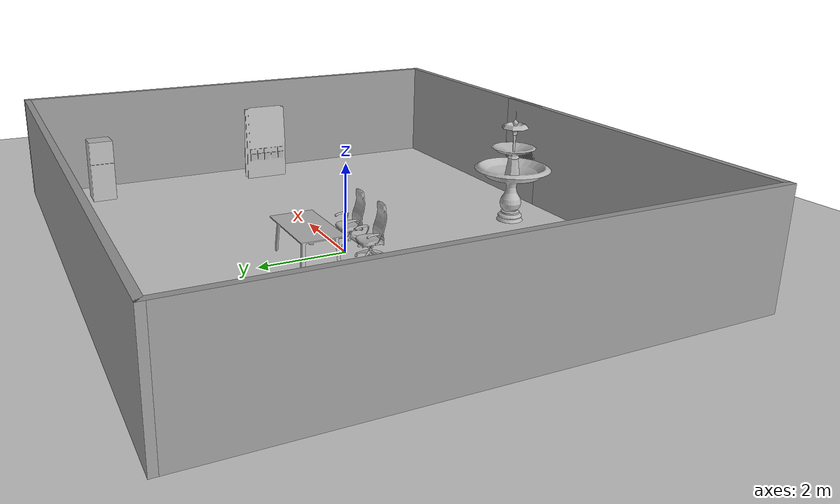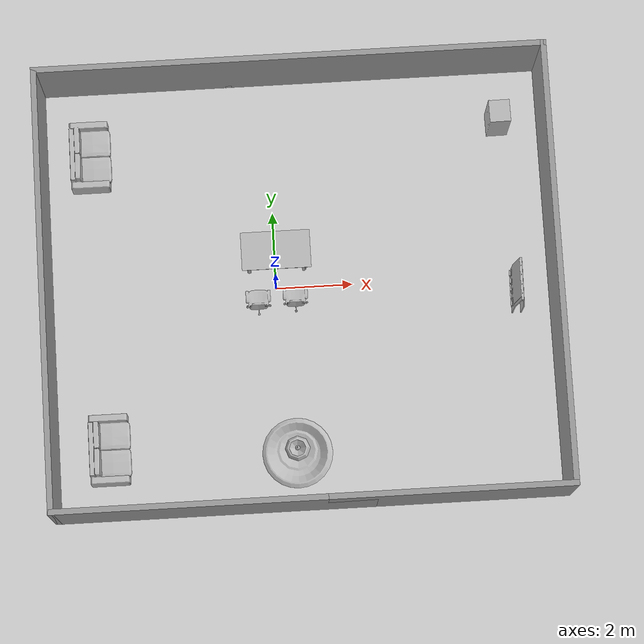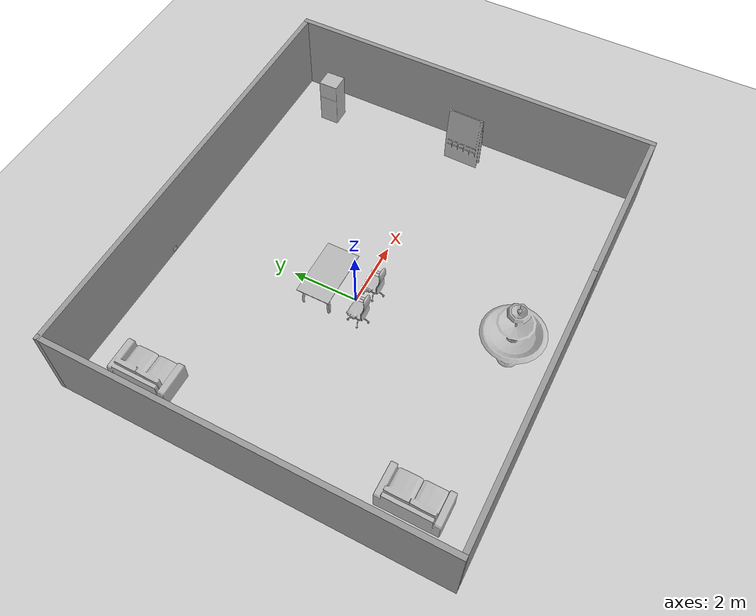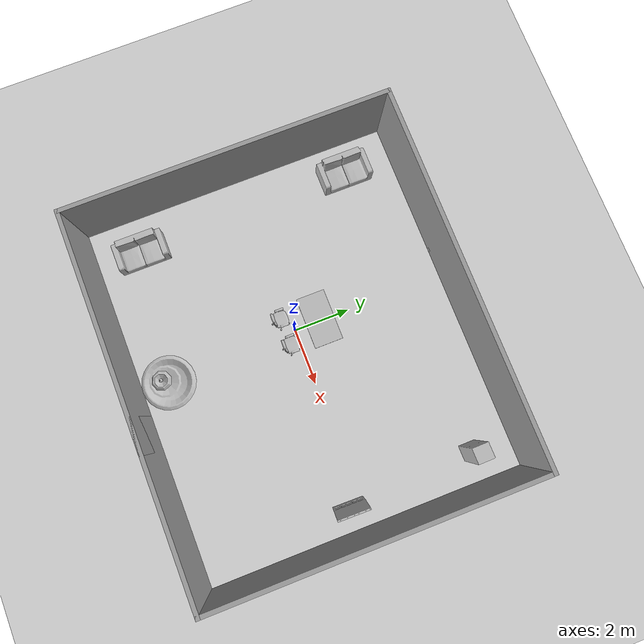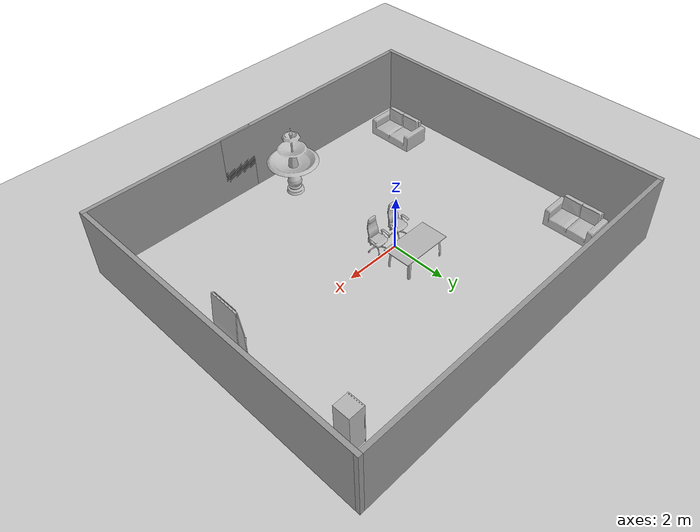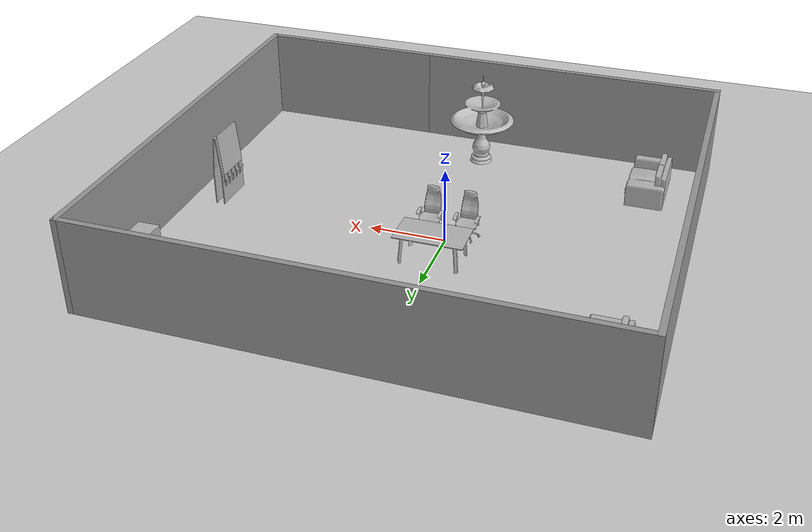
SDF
<sdf version="1.7">
 <world name="default">
  <light name="sun" type="directional">
   <pose>0 0 10 0 -0 0</pose>
   <diffuse>0.8 0.8 0.8 1</diffuse>
   <specular>0.2 0.2 0.2 1</specular>
   <attenuation>
    <range>1000</range>
    <constant>0.9</constant>
    <linear>0.01</linear>
    <quadratic>0.001</quadratic>
   </attenuation>
   <direction>-0.5 0.1 -0.9</direction>
   <spot><inner_angle>0</inner_angle><outer_angle>0</outer_angle><falloff>0</falloff></spot>
  </light>
  <model name="ground_plane">
   <static>1</static>
   <link name="link">
    <collision name="collision">
     <geometry><plane><normal>0 0 1</normal><size>100 100</size></plane></geometry>
     <surface><friction><ode><mu>100</mu><mu2>50</mu2></ode></friction></surface>
    </collision>
    <visual name="visual">
     <cast_shadows>0</cast_shadows>
     <geometry><plane><normal>0 0 1</normal><size>100 100</size></plane></geometry>
     <material>
      <script><uri>file://media/materials/scripts/gazebo.material</uri><name>Gazebo/Grey</name></script>
     </material>
    </visual>
   </link>
  </model>
  <gravity>0 0 -9.8</gravity>
  <magnetic_field>6e-06 2.3e-05 -4.2e-05</magnetic_field>
  <atmosphere type="adiabatic"/>
  <physics type="ode">
   <max_step_size>0.001</max_step_size>
   <real_time_factor>1</real_time_factor>
   <real_time_update_rate>1000</real_time_update_rate>
  </physics>
  <scene><ambient>0.4 0.4 0.4 1</ambient><background>0.7 0.7 0.7 1</background><shadows>1</shadows></scene>
  <audio><device>default</device></audio>
  <spherical_coordinates>
   <surface_model>EARTH_WGS84</surface_model>
   <latitude_deg>0</latitude_deg>
   <longitude_deg>0</longitude_deg>
   <elevation>0</elevation>
   <heading_deg>0</heading_deg>
  </spherical_coordinates>
  <model name="building_plan_small">
   <pose>0.63358 -0.10139 0 0 -0 0</pose>
   <link name="Wall_0">
    <collision name="Wall_0_Collision">
     <geometry><box><size>6.25 0.15 2.5</size></box></geometry>
     <pose>0 0 1.25 0 -0 0</pose>
    </collision>
    <visual name="Wall_0_Visual">
     <pose>0 0 1.25 0 -0 0</pose>
     <geometry><box><size>6.25 0.15 2.5</size></box></geometry>
     <material>
      <script><uri>file://media/materials/scripts/gazebo.material</uri><name>Gazebo/Grey</name></script>
      <ambient>1 1 1 1</ambient>
     </material>
     <meta><layer>0</layer></meta>
    </visual>
    <pose>3.5 -5.675 0 0 -0 0</pose>
   </link>
   <link name="Wall_3">
    <collision name="Wall_3_Collision">
     <geometry><box><size>11.5 0.15 2.5</size></box></geometry>
     <pose>0 0 1.25 0 -0 0</pose>
    </collision>
    <visual name="Wall_3_Visual">
     <pose>0 0 1.25 0 -0 0</pose>
     <geometry><box><size>11.5 0.15 2.5</size></box></geometry>
     <material>
      <script><uri>file://media/materials/scripts/gazebo.material</uri><name>Gazebo/Grey</name></script>
      <ambient>1 1 1 1</ambient>
     </material>
     <meta><layer>0</layer></meta>
    </visual>
    <pose>6.55 0 0 0 -0 1.5708</pose>
   </link>
   <link name="Wall_4">
    <collision name="Wall_4_Collision">
     <geometry><box><size>13.25 0.15 2.5</size></box></geometry>
     <pose>0 0 1.25 0 -0 0</pose>
    </collision>
    <visual name="Wall_4_Visual">
     <pose>0 0 1.25 0 -0 0</pose>
     <geometry><box><size>13.25 0.15 2.5</size></box></geometry>
     <material>
      <script><uri>file://media/materials/scripts/gazebo.material</uri><name>Gazebo/Grey</name></script>
      <ambient>1 1 1 1</ambient>
     </material>
     <meta><layer>0</layer></meta>
    </visual>
    <pose>0 5.675 0 0 -0 3.14159</pose>
   </link>
   <link name="Wall_5">
    <collision name="Wall_5_Collision">
     <geometry><box><size>11.5 0.15 2.5</size></box></geometry>
     <pose>0 0 1.25 0 -0 0</pose>
    </collision>
    <visual name="Wall_5_Visual">
     <pose>0 0 1.25 0 -0 0</pose>
     <geometry><box><size>11.5 0.15 2.5</size></box></geometry>
     <material>
      <script><uri>file://media/materials/scripts/gazebo.material</uri><name>Gazebo/Grey</name></script>
      <ambient>1 1 1 1</ambient>
     </material>
     <meta><layer>0</layer></meta>
    </visual>
    <pose>-6.55 0 0 0 -0 -1.5708</pose>
   </link>
   <link name="Wall_6">
    <collision name="Wall_6_Collision">
     <geometry><box><size>8.25 0.15 2.5</size></box></geometry>
     <pose>0 0 1.25 0 -0 0</pose>
    </collision>
    <visual name="Wall_6_Visual">
     <pose>0 0 1.25 0 -0 0</pose>
     <geometry><box><size>8.25 0.15 2.5</size></box></geometry>
     <material>
      <script><uri>file://media/materials/scripts/gazebo.material</uri><name>Gazebo/Grey</name></script>
      <ambient>1 1 1 1</ambient>
     </material>
     <meta><layer>0</layer></meta>
    </visual>
    <pose>-2.5 -5.675 0 0 -0 0</pose>
   </link>
   <static>1</static>
  </model>
  <model name="Sofa">
   <link name="link">
    <pose>0 0 0 0 -0 1.5708</pose>
    <visual name="visual"><geometry><mesh><uri>model://Sofa/meshes/Sofa.obj</uri></mesh></geometry></visual>
    <collision name="collision">
     <geometry><mesh><uri>model://Sofa/meshes/Sofa.obj</uri></mesh></geometry>
    </collision>
    <inertial>
     <inertia><ixx>1</ixx><ixy>0</ixy><ixz>0</ixz><iyy>1</iyy><iyz>0</iyz><izz>1</izz></inertia>
     <mass>1</mass>
    </inertial>
   </link>
   <pose>-4.70076 3.70988 0.000117 -5e-06 2e-06 -0</pose>
  </model>
  <model name="Sofa_clone">
   <link name="link">
    <pose>0 0 0 0 -0 1.5708</pose>
    <visual name="visual"><geometry><mesh><uri>model://Sofa/meshes/Sofa.obj</uri></mesh></geometry></visual>
    <collision name="collision">
     <geometry><mesh><uri>model://Sofa/meshes/Sofa.obj</uri></mesh></geometry>
    </collision>
    <inertial>
     <inertia><ixx>1</ixx><ixy>0</ixy><ixz>0</ixz><iyy>1</iyy><iyz>0</iyz><izz>1</izz></inertia>
     <mass>1</mass>
    </inertial>
   </link>
   <pose>-4.52224 -4.04998 0.00012 0 -0 0</pose>
  </model>
  <model name="RecTable">
   <static>1</static>
   <link name="body">
    <visual name="visual">
     <geometry><mesh><uri>model://RecTable/meshes/RecTable.obj</uri></mesh></geometry>
    </visual>
    <collision name="collision">
     <geometry><mesh><uri>model://RecTable/meshes/RecTable_Col.obj</uri></mesh></geometry>
    </collision>
   </link>
   <pose>0.034183 0.88507 0 0 -0 0</pose>
  </model>
  <model name="DigitalKiosk">
   <static>1</static>
   <link name="body">
    <visual name="visual">
     <geometry><mesh><uri>model://DigitalKiosk/meshes/DigitalKiosk.obj</uri></mesh></geometry>
    </visual>
    <collision name="collision">
     <geometry><mesh><uri>model://DigitalKiosk/meshes/DigitalKiosk_Col.obj</uri></mesh></geometry>
    </collision>
   </link>
   <pose>6.25232 -0.453271 0 0 -0 3.12528</pose>
  </model>
  <model name="DeskChair">
   <static>1</static>
   <link name="link">
    <pose>0 0 0 0 -0 1.5708</pose>
    <collision name="collision">
     <pose>0.001581 0.000308 0.612847 0 -0 0</pose>
     <geometry><cylinder><radius>0.33</radius><length>1.23</length></cylinder></geometry>
    </collision>
    <visual name="visual">
     <geometry>
      <mesh><uri>model://DeskChair/meshes/DeskChair.obj</uri><scale>0.01 0.01 0.01</scale></mesh>
     </geometry>
    </visual>
   </link>
   <pose>-0.484024 -0.351488 0 -0.005178 -0.026672 1.5737</pose>
  </model>
  <model name="Fridge">
   <static>1</static>
   <link name="body">
    <visual name="visual"><geometry><mesh><uri>model://Fridge/meshes/Fridge.obj</uri></mesh></geometry></visual>
    <collision name="collision">
     <geometry><mesh><uri>model://Fridge/meshes/Fridge_Col.obj</uri></mesh></geometry>
    </collision>
   </link>
   <pose>6.03332 4.07435 0 0 0 -1.55778</pose>
  </model>
  <model name="Fountain">
   <static>1</static>
   <link name="link">
    <collision name="collision">
     <geometry><mesh><uri>model://Fountain/meshes/fountain.dae</uri></mesh></geometry>
    </collision>
    <visual name="visual">
     <geometry><mesh><uri>model://Fountain/meshes/fountain.dae</uri></mesh></geometry>
    </visual>
   </link>
   <pose>0.305475 -4.5035 0 0 -0 0</pose>
  </model>
  <model name="DeskChair_clone">
   <static>1</static>
   <link name="link">
    <pose>0 0 0 0 -0 1.5708</pose>
    <collision name="collision">
     <pose>0.001581 0.000308 0.612847 0 -0 0</pose>
     <geometry><cylinder><radius>0.33</radius><length>1.23</length></cylinder></geometry>
    </collision>
    <visual name="visual">
     <geometry>
      <mesh><uri>model://DeskChair/meshes/DeskChair.obj</uri><scale>0.01 0.01 0.01</scale></mesh>
     </geometry>
    </visual>
   </link>
   <pose>0.482763 -0.324437 0 -0.005177 -0.026672 1.5737</pose>
  </model>
  <model name="aruco_marker">
   <link name="link">
    <inertial>
     <mass>0.001</mass>
     <inertia>
      <ixx>3.75e-06</ixx>
      <ixy>0</ixy>
      <ixz>0</ixz>
      <iyy>1.875e-06</iyy>
      <iyz>0</iyz>
      <izz>1.875e-06</izz>
     </inertia>
    </inertial>
    <visual name="front_visual">
     <pose>5e-05 0 0 0 -0 0</pose>
     <geometry><box><size>0.0001 0.15 0.15</size></box></geometry>
     <material>
      <script>
       <uri>model://aruco_marker/materials/scripts</uri>
       <uri>model://aruco_marker/materials/textures</uri>
       <name>Marker</name>
      </script>
     </material>
    </visual>
    <visual name="rear_visual">
     <pose>-5e-05 0 0 0 -0 0</pose>
     <geometry><box><size>0.0001 0.15 0.15</size></box></geometry>
    </visual>
    <collision name="collision"><geometry><box><size>0.0001 0.15 0.15</size></box></geometry></collision>
   </link>
   <pose>-0.969965 5.47206 0.168815 2.4e-05 1.9e-05 -1.54797</pose>
  </model>
 </world>
</sdf>
